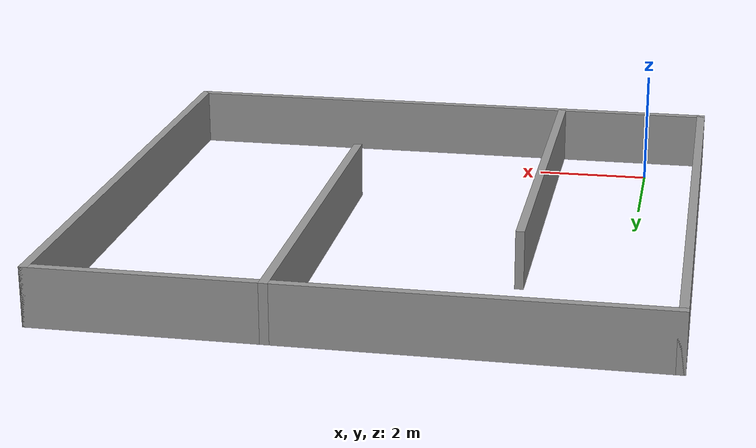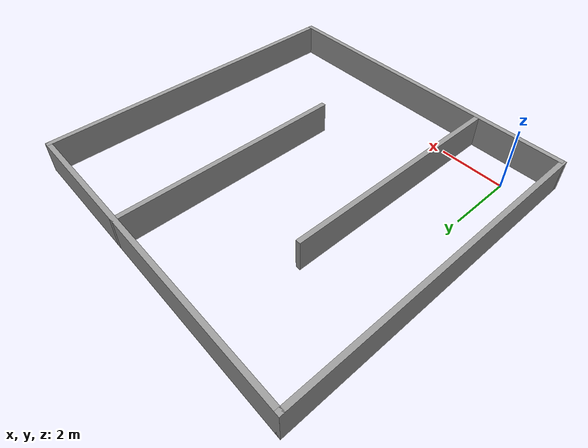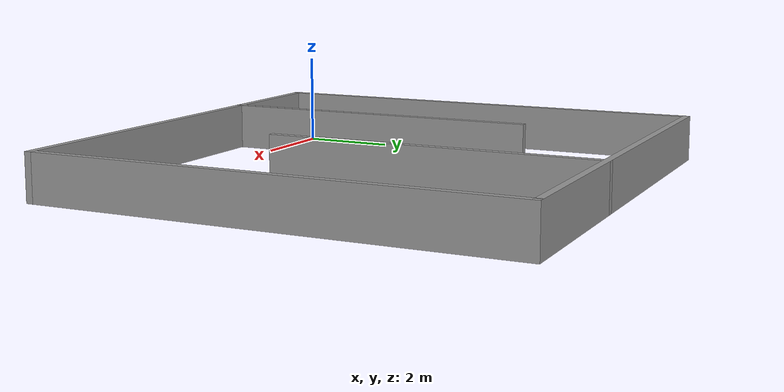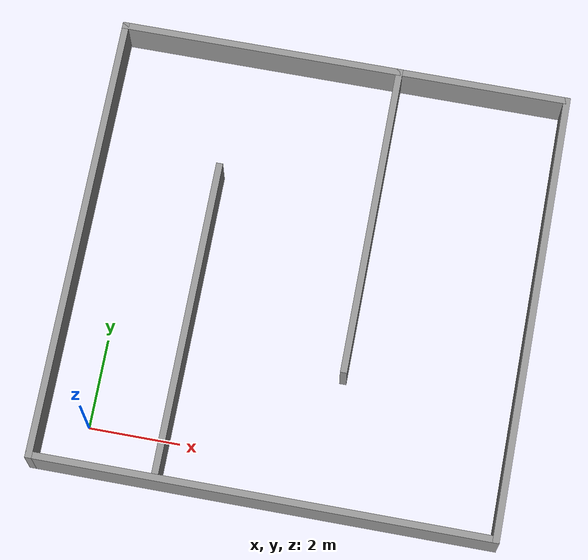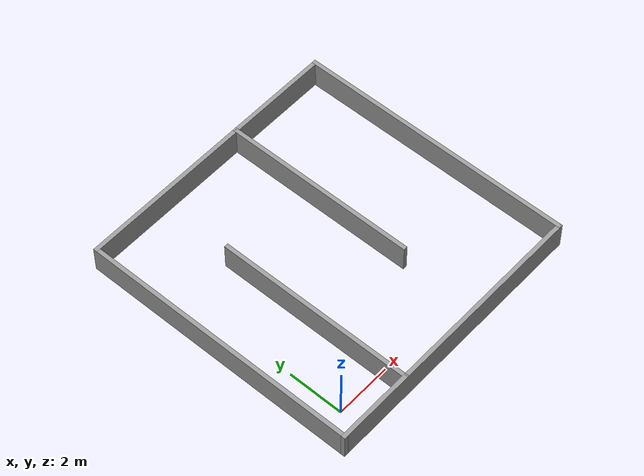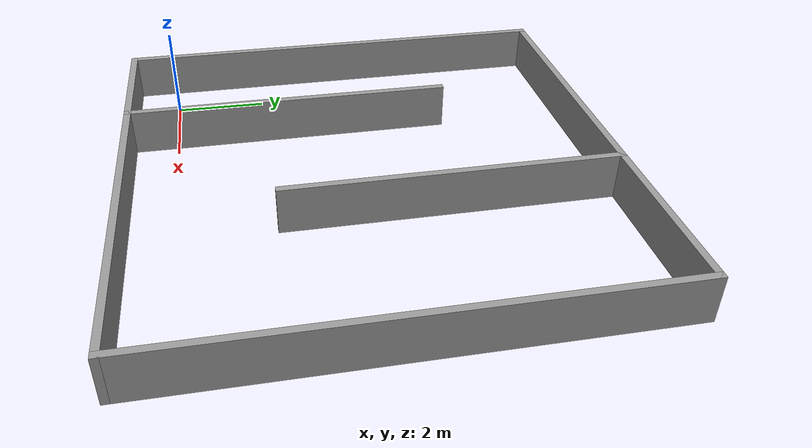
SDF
<?xml version='1.0'?>
<sdf version='1.7'>
  <model name='Untitled'>
    <pose>4 4.0001 0 0 -0 0</pose>
    <link name='Wall_0'>
      <collision name='Wall_0_Collision'>
        <geometry>
          <box>
            <size>10.15 0.15 1</size>
          </box>
        </geometry>
        <pose>0 0 0.5 0 -0 0</pose>
      </collision>
      <visual name='Wall_0_Visual'>
        <pose>0 0 0.5 0 -0 0</pose>
        <geometry>
          <box>
            <size>10.15 0.15 1</size>
          </box>
        </geometry>
        <material>
          <script>
            <uri>file://media/materials/scripts/gazebo.material</uri>
            <name>Gazebo/Grey</name>
          </script>
          <ambient>1 1 1 1</ambient>
        </material>
        <meta>
          <layer>0</layer>
        </meta>
      </visual>
      <pose>-5 -0.000101 0 0 -0 1.5708</pose>
    </link>
    <link name='Wall_1'>
      <collision name='Wall_1_Collision'>
        <geometry>
          <box>
            <size>10.15 0.15 1</size>
          </box>
        </geometry>
        <pose>0 0 0.5 0 -0 0</pose>
      </collision>
      <visual name='Wall_1_Visual'>
        <pose>0 0 0.5 0 -0 0</pose>
        <geometry>
          <box>
            <size>10.15 0.15 1</size>
          </box>
        </geometry>
        <material>
          <script>
            <uri>file://media/materials/scripts/gazebo.material</uri>
            <name>Gazebo/Grey</name>
          </script>
          <ambient>1 1 1 1</ambient>
        </material>
        <meta>
          <layer>0</layer>
        </meta>
      </visual>
      <pose>-0 4.9999 0 0 -0 0</pose>
    </link>
    <link name='Wall_2'>
      <collision name='Wall_2_Collision'>
        <geometry>
          <box>
            <size>10.15 0.15 1</size>
          </box>
        </geometry>
        <pose>0 0 0.5 0 -0 0</pose>
      </collision>
      <visual name='Wall_2_Visual'>
        <pose>0 0 0.5 0 -0 0</pose>
        <geometry>
          <box>
            <size>10.15 0.15 1</size>
          </box>
        </geometry>
        <material>
          <script>
            <uri>file://media/materials/scripts/gazebo.material</uri>
            <name>Gazebo/Grey</name>
          </script>
          <ambient>1 1 1 1</ambient>
        </material>
        <meta>
          <layer>0</layer>
        </meta>
      </visual>
      <pose>5 -0.000101 0 0 -0 -1.5708</pose>
    </link>
    <link name='Wall_3'>
      <collision name='Wall_3_Collision'>
        <geometry>
          <box>
            <size>10.15 0.15 1</size>
          </box>
        </geometry>
        <pose>0 0 0.5 0 -0 0</pose>
      </collision>
      <visual name='Wall_3_Visual'>
        <pose>0 0 0.5 0 -0 0</pose>
        <geometry>
          <box>
            <size>10.15 0.15 1</size>
          </box>
        </geometry>
        <material>
          <script>
            <uri>file://media/materials/scripts/gazebo.material</uri>
            <name>Gazebo/Grey</name>
          </script>
          <ambient>1 1 1 1</ambient>
        </material>
        <meta>
          <layer>0</layer>
        </meta>
      </visual>
      <pose>-0 -5.0001 0 0 -0 3.14159</pose>
    </link>
    <link name='Wall_5'>
      <collision name='Wall_5_Collision'>
        <geometry>
          <box>
            <size>7.22998 0.15 1</size>
          </box>
        </geometry>
        <pose>0 0 0.5 0 -0 0</pose>
      </collision>
      <visual name='Wall_5_Visual'>
        <pose>0 0 0.5 0 -0 0</pose>
        <geometry>
          <box>
            <size>7.22998 0.15 1</size>
          </box>
        </geometry>
        <material>
          <script>
            <uri>file://media/materials/scripts/gazebo.material</uri>
            <name>Gazebo/Grey</name>
          </script>
          <ambient>1 1 1 1</ambient>
        </material>
        <meta>
          <layer>0</layer>
        </meta>
      </visual>
      <pose>-2.294 -1.4601 0 0 -0 1.5708</pose>
    </link>
    <link name='Wall_7'>
      <collision name='Wall_7_Collision'>
        <geometry>
          <box>
            <size>7.1084 0.15 1</size>
          </box>
        </geometry>
        <pose>0 0 0.5 0 -0 0</pose>
      </collision>
      <visual name='Wall_7_Visual'>
        <pose>0 0 0.5 0 -0 0</pose>
        <geometry>
          <box>
            <size>7.1084 0.15 1</size>
          </box>
        </geometry>
        <material>
          <script>
            <uri>file://media/materials/scripts/gazebo.material</uri>
            <name>Gazebo/Grey</name>
          </script>
          <ambient>1 1 1 1</ambient>
        </material>
        <meta>
          <layer>0</layer>
        </meta>
      </visual>
      <pose>1.226 1.5209 0 0 -0 -1.5708</pose>
    </link>
    <static>1</static>
  </model>
</sdf>
